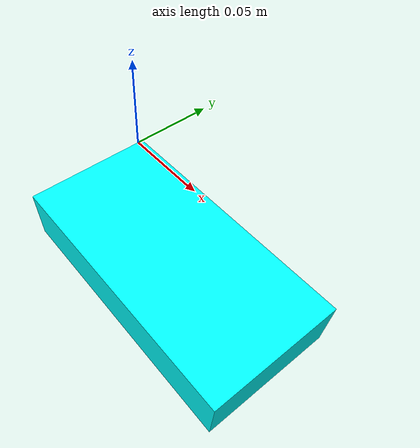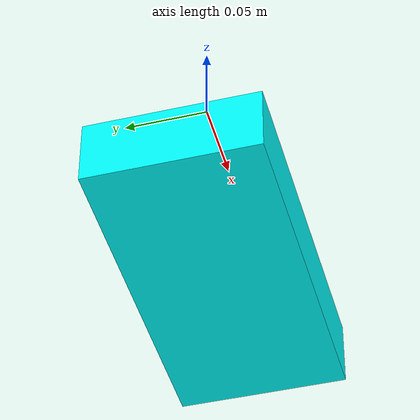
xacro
<?xml version="1.0"?>
<robot xmlns:xacro="http://ros.org/wiki/xacro">

    <link name ="LFoot">
      <inertial>
        <origin xyz="0.0096921046 0.0090460227 -0.043062308" rpy="0 0 0"/>
        <mass value="0.66646684"/>
        <inertia ixx="0.0012944808"  ixy="9.2387693E-5"  ixz="2.0080105E-4" iyy="0.0015851846" iyz="-2.7599327E-4" izz="0.0013326766" />
      </inertial>
      <visual>
       <origin xyz="0.03 0 -0.09" rpy="0 0 0" />
       <geometry>
         <box size="0.2 0.1 0.04" />
       </geometry>
       <material name="Cyan">
         <color rgba="0 1.0 1.0 1.0"/>
       </material>
     </visual>
     <collision>
       <origin xyz="0.03 0 -0.09" rpy="0 0 0"/>
       <geometry>
         <box size="0.2 0.1 0.04" />
       </geometry>
     </collision>
    </link>
</robot>
